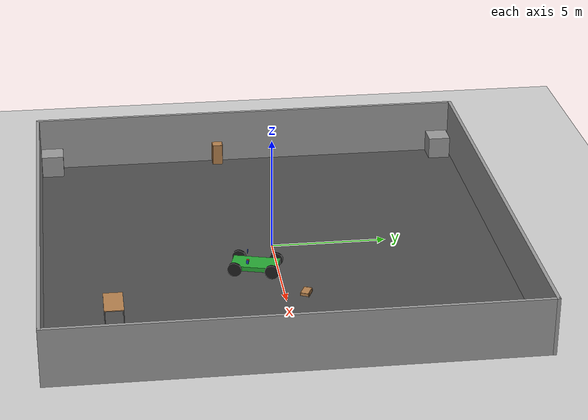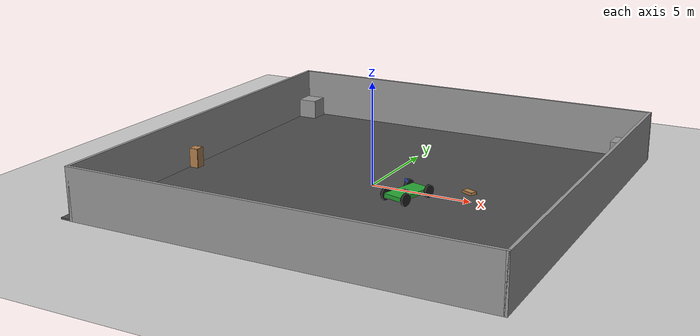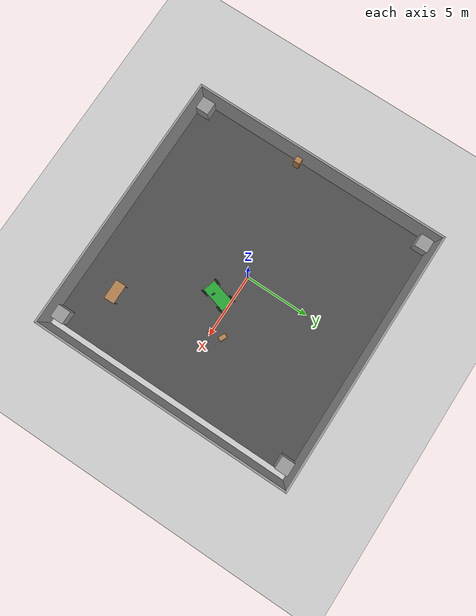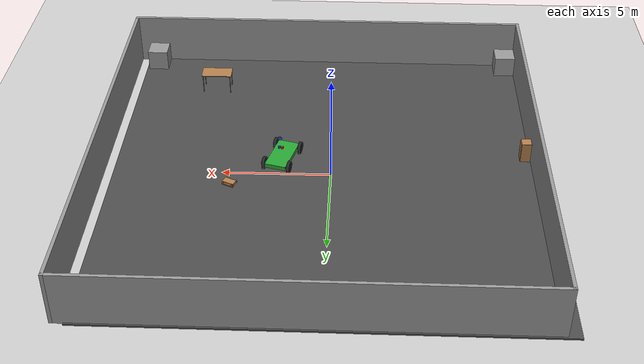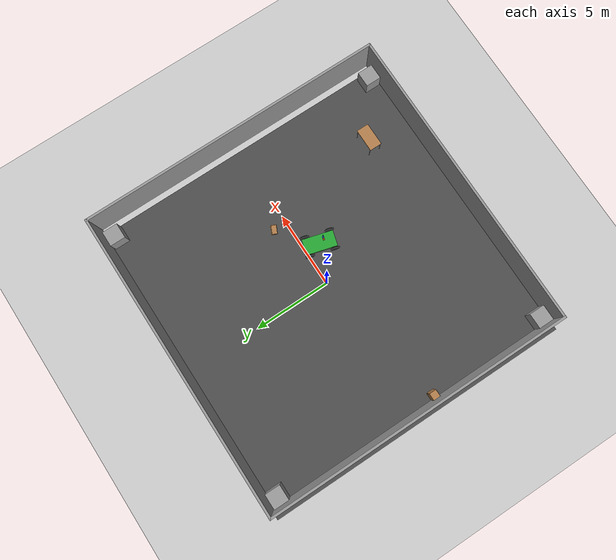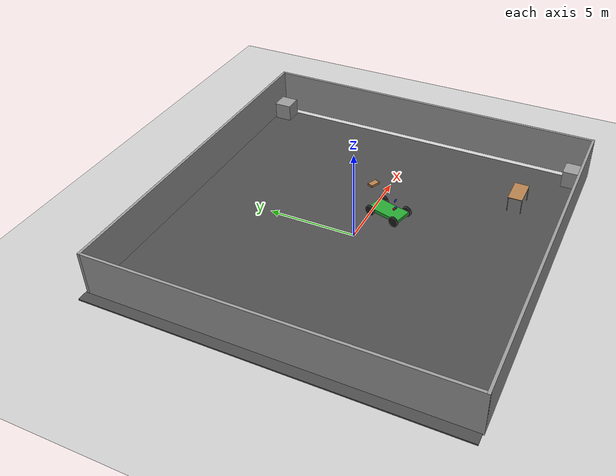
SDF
<sdf version="1.7">
 <world name="default">
  <model name="ground_plane">
   <static>1</static>
   <link name="link">
    <collision name="collision">
     <geometry><plane><normal>0 0 1</normal><size>100 100</size></plane></geometry>
     <surface><friction><ode><mu>100</mu><mu2>50</mu2></ode></friction></surface>
    </collision>
    <visual name="visual">
     <cast_shadows>0</cast_shadows>
     <geometry><plane><normal>0 0 1</normal><size>100 100</size></plane></geometry>
     <material>
      <script><uri>file://media/materials/scripts/gazebo.material</uri><name>Gazebo/Grey</name></script>
     </material>
    </visual>
   </link>
  </model>
  <model name="asphalt_plane">
   <static>1</static>
   <link name="link">
    <collision name="collision"><geometry><box><size>20 20 0.1</size></box></geometry></collision>
    <visual name="visual">
     <cast_shadows>0</cast_shadows>
     <geometry><box><size>20 20 0.1</size></box></geometry>
     <material>
      <script>
       <uri>model://asphalt_plane/materials/scripts</uri>
       <uri>model://asphalt_plane/materials/textures</uri>
       <name>vrc/asphalt</name>
      </script>
     </material>
    </visual>
   </link>
   <pose>0.027118 -0.028406 0 0 -0 0</pose>
  </model>
  <model name="4Walls">
   <pose>0.588305 -0.1078 0 0 -0 0</pose>
   <link name="Wall_17">
    <collision name="Wall_17_Collision">
     <geometry><box><size>20 0.15 2.5</size></box></geometry>
     <pose>0 0 1.25 0 -0 0</pose>
    </collision>
    <visual name="Wall_17_Visual">
     <pose>0 0 1.25 0 -0 0</pose>
     <geometry><box><size>20 0.15 2.5</size></box></geometry>
     <material>
      <script><uri>file://media/materials/scripts/gazebo.material</uri><name>Gazebo/Grey</name></script>
      <ambient>1 1 1 1</ambient>
     </material>
     <meta><layer>0</layer></meta>
    </visual>
    <pose>0 -9.925 0 0 -0 0</pose>
   </link>
   <link name="Wall_19">
    <collision name="Wall_19_Collision">
     <geometry><box><size>20 0.15 2.5</size></box></geometry>
     <pose>0 0 1.25 0 -0 0</pose>
    </collision>
    <visual name="Wall_19_Visual">
     <pose>0 0 1.25 0 -0 0</pose>
     <geometry><box><size>20 0.15 2.5</size></box></geometry>
     <material>
      <script><uri>file://media/materials/scripts/gazebo.material</uri><name>Gazebo/Grey</name></script>
      <ambient>1 1 1 1</ambient>
     </material>
     <meta><layer>0</layer></meta>
    </visual>
    <pose>9.925 -0 0 0 -0 1.5708</pose>
   </link>
   <link name="Wall_21">
    <collision name="Wall_21_Collision">
     <geometry><box><size>20 0.15 2.5</size></box></geometry>
     <pose>0 0 1.25 0 -0 0</pose>
    </collision>
    <visual name="Wall_21_Visual">
     <pose>0 0 1.25 0 -0 0</pose>
     <geometry><box><size>20 0.15 2.5</size></box></geometry>
     <material>
      <script><uri>file://media/materials/scripts/gazebo.material</uri><name>Gazebo/Grey</name></script>
      <ambient>1 1 1 1</ambient>
     </material>
     <meta><layer>0</layer></meta>
    </visual>
    <pose>0 9.925 0 0 -0 3.14159</pose>
   </link>
   <link name="Wall_22">
    <collision name="Wall_22_Collision">
     <geometry><box><size>20 0.15 2.5</size></box></geometry>
     <pose>0 0 1.25 0 -0 0</pose>
    </collision>
    <visual name="Wall_22_Visual">
     <pose>0 0 1.25 0 -0 0</pose>
     <geometry><box><size>20 0.15 2.5</size></box></geometry>
     <material>
      <script><uri>file://media/materials/scripts/gazebo.material</uri><name>Gazebo/Grey</name></script>
      <ambient>1 1 1 1</ambient>
     </material>
     <meta><layer>0</layer></meta>
    </visual>
    <pose>-9.925 -0 0 0 -0 -1.5708</pose>
   </link>
   <static>1</static>
  </model>
  <model name="unit_box">
   <pose>9.40673 -9.39921 0.550002 -4e-06 -0 9.7e-05</pose>
   <link name="link">
    <inertial>
     <mass>1</mass>
     <inertia>
      <ixx>0.166667</ixx>
      <ixy>0</ixy>
      <ixz>0</ixz>
      <iyy>0.166667</iyy>
      <iyz>0</iyz>
      <izz>0.166667</izz>
     </inertia>
    </inertial>
    <collision name="collision"><geometry><box><size>1 1 1</size></box></geometry></collision>
    <visual name="visual">
     <geometry><box><size>1 1 1</size></box></geometry>
     <material>
      <script><name>Gazebo/Grey</name><uri>file://media/materials/scripts/gazebo.material</uri></script>
     </material>
    </visual>
   </link>
  </model>
  <model name="unit_box_clone">
   <pose>9.42462 9.16406 0.550002 -4e-06 -0 4e-05</pose>
   <link name="link">
    <inertial>
     <mass>1</mass>
     <inertia>
      <ixx>0.166667</ixx>
      <ixy>0</ixy>
      <ixz>0</ixz>
      <iyy>0.166667</iyy>
      <iyz>0</iyz>
      <izz>0.166667</izz>
     </inertia>
    </inertial>
    <collision name="collision"><geometry><box><size>1 1 1</size></box></geometry></collision>
    <visual name="visual">
     <geometry><box><size>1 1 1</size></box></geometry>
     <material>
      <script><name>Gazebo/Grey</name><uri>file://media/materials/scripts/gazebo.material</uri></script>
     </material>
    </visual>
   </link>
  </model>
  <model name="unit_box_clone_clone">
   <pose>-8.76167 9.164 0.55 0 -0 -1e-06</pose>
   <link name="link">
    <inertial>
     <mass>1</mass>
     <inertia>
      <ixx>0.166667</ixx>
      <ixy>0</ixy>
      <ixz>0</ixz>
      <iyy>0.166667</iyy>
      <iyz>0</iyz>
      <izz>0.166667</izz>
     </inertia>
    </inertial>
    <collision name="collision"><geometry><box><size>1 1 1</size></box></geometry></collision>
    <visual name="visual">
     <geometry><box><size>1 1 1</size></box></geometry>
     <material>
      <script><name>Gazebo/Grey</name><uri>file://media/materials/scripts/gazebo.material</uri></script>
     </material>
    </visual>
   </link>
  </model>
  <model name="unit_box_clone_clone_clone">
   <pose>-8.75868 -9.42715 0.550002 -4e-06 0 0.001256</pose>
   <link name="link">
    <inertial>
     <mass>1</mass>
     <inertia>
      <ixx>0.166667</ixx>
      <ixy>0</ixy>
      <ixz>0</ixz>
      <iyy>0.166667</iyy>
      <iyz>0</iyz>
      <izz>0.166667</izz>
     </inertia>
    </inertial>
    <collision name="collision"><geometry><box><size>1 1 1</size></box></geometry></collision>
    <visual name="visual">
     <geometry><box><size>1 1 1</size></box></geometry>
     <material>
      <script><name>Gazebo/Grey</name><uri>file://media/materials/scripts/gazebo.material</uri></script>
     </material>
    </visual>
   </link>
  </model>
  <model name="cabinet">
   <static>1</static>
   <link name="cabinet_bottom_plate">
    <inertial>
     <pose>0 0 -1 0 -0 0</pose>
     <inertia><ixx>2.05</ixx><ixy>0</ixy><ixz>0</ixz><iyy>2.05</iyy><iyz>0</iyz><izz>2.05</izz></inertia>
     <mass>25</mass>
    </inertial>
    <collision name="cabinet_bottom_plate_geom">
     <pose>0 0 0.01 0 -0 0</pose>
     <geometry><box><size>0.45 0.45 0.02</size></box></geometry>
    </collision>
    <visual name="cabinet_bottom_plate_geom_visual">
     <pose>0 0 0.01 0 -0 0</pose>
     <geometry><box><size>0.45 0.45 0.02</size></box></geometry>
     <material>
      <script><uri>file://media/materials/scripts/gazebo.material</uri><name>Gazebo/Wood</name></script>
     </material>
    </visual>
    <collision name="cabinet_bottom_plate_geom_cabinet_back_plate">
     <pose>0.235 0 0.51 0 -0 0</pose>
     <geometry><box><size>0.02 0.45 1.02</size></box></geometry>
    </collision>
    <visual name="cabinet_bottom_plate_geom_cabinet_back_plate_visual">
     <pose>0.235 0 0.51 0 -0 0</pose>
     <geometry><box><size>0.02 0.45 1.02</size></box></geometry>
     <material>
      <script><uri>file://media/materials/scripts/gazebo.material</uri><name>Gazebo/Wood</name></script>
     </material>
    </visual>
    <collision name="cabinet_bottom_plate_geom_cabinet_left_plate">
     <pose>0 0.235 0.51 0 -0 0</pose>
     <geometry><box><size>0.45 0.02 1.02</size></box></geometry>
    </collision>
    <visual name="cabinet_bottom_plate_geom_cabinet_left_plate_visual">
     <pose>0 0.235 0.51 0 -0 0</pose>
     <geometry><box><size>0.45 0.02 1.02</size></box></geometry>
     <material>
      <script><uri>file://media/materials/scripts/gazebo.material</uri><name>Gazebo/Wood</name></script>
     </material>
    </visual>
    <collision name="cabinet_bottom_plate_geom_cabinet_middle_plate">
     <pose>0 0 0.51 0 -0 0</pose>
     <geometry><box><size>0.45 0.45 0.02</size></box></geometry>
    </collision>
    <visual name="cabinet_bottom_plate_geom_cabinet_middle_plate_visual">
     <pose>0 0 0.51 0 -0 0</pose>
     <geometry><box><size>0.45 0.45 0.02</size></box></geometry>
     <material>
      <script><uri>file://media/materials/scripts/gazebo.material</uri><name>Gazebo/Wood</name></script>
     </material>
    </visual>
    <collision name="cabinet_bottom_plate_geom_cabinet_right_plate">
     <pose>0 -0.235 0.51 0 -0 0</pose>
     <geometry><box><size>0.45 0.02 1.02</size></box></geometry>
    </collision>
    <visual name="cabinet_bottom_plate_geom_cabinet_right_plate_visual">
     <pose>0 -0.235 0.51 0 -0 0</pose>
     <geometry><box><size>0.45 0.02 1.02</size></box></geometry>
     <material>
      <script><uri>file://media/materials/scripts/gazebo.material</uri><name>Gazebo/Wood</name></script>
     </material>
    </visual>
    <collision name="cabinet_bottom_plate_geom_cabinet_top_plate">
     <pose>0 0 1.01 0 -0 0</pose>
     <geometry><box><size>0.45 0.45 0.02</size></box></geometry>
    </collision>
    <visual name="cabinet_bottom_plate_geom_cabinet_top_plate_visual">
     <pose>0 0 1.01 0 -0 0</pose>
     <geometry><box><size>0.45 0.45 0.02</size></box></geometry>
     <material>
      <script><uri>file://media/materials/scripts/gazebo.material</uri><name>Gazebo/Wood</name></script>
     </material>
    </visual>
   </link>
   <pose>-9.0181 -1.55988 0 0 -0 0</pose>
  </model>
  <model name="car">
   <link name="chassis">
    <pose>0 0 0.3 0 -0 0</pose>
    <collision name="collision"><geometry><box><size>2 1 0.2</size></box></geometry></collision>
    <visual name="visual">
     <geometry><box><size>2 1 0.2</size></box></geometry>
     <material>
      <script><uri>file://media/materials/scripts/gazebo.material</uri><name>Gazebo/Green</name></script>
     </material>
    </visual>
    <inertial>
     <inertia><ixx>1</ixx><ixy>0</ixy><ixz>0</ixz><iyy>1</iyy><iyz>0</iyz><izz>1</izz></inertia>
     <mass>1</mass>
    </inertial>
   </link>
   <link name="front_left_wheel">
    <pose>0.8 0.6 0.3 -0 1.5707 1.5707</pose>
    <collision name="collision">
     <geometry><cylinder><radius>0.3</radius><length>0.1</length></cylinder></geometry>
    </collision>
    <visual name="visual">
     <geometry><cylinder><radius>0.3</radius><length>0.1</length></cylinder></geometry>
     <material>
      <script><uri>file://media/materials/scripts/gazebo.material</uri><name>Gazebo/Black</name></script>
     </material>
    </visual>
    <inertial>
     <inertia><ixx>1</ixx><ixy>0</ixy><ixz>0</ixz><iyy>1</iyy><iyz>0</iyz><izz>1</izz></inertia>
     <mass>1</mass>
    </inertial>
   </link>
   <link name="front_right_wheel">
    <pose>0.8 -0.6 0.3 -0 1.5707 1.5707</pose>
    <collision name="collision">
     <geometry><cylinder><radius>0.3</radius><length>0.1</length></cylinder></geometry>
    </collision>
    <visual name="visual">
     <geometry><cylinder><radius>0.3</radius><length>0.1</length></cylinder></geometry>
     <material>
      <script><uri>file://media/materials/scripts/gazebo.material</uri><name>Gazebo/Black</name></script>
     </material>
    </visual>
    <inertial>
     <inertia><ixx>1</ixx><ixy>0</ixy><ixz>0</ixz><iyy>1</iyy><iyz>0</iyz><izz>1</izz></inertia>
     <mass>1</mass>
    </inertial>
   </link>
   <link name="back_right_wheel">
    <pose>-0.8 -0.6 0.3 -0 1.5707 1.5707</pose>
    <collision name="collision">
     <geometry><cylinder><radius>0.3</radius><length>0.1</length></cylinder></geometry>
    </collision>
    <visual name="visual">
     <geometry><cylinder><radius>0.3</radius><length>0.1</length></cylinder></geometry>
     <material>
      <script><uri>file://media/materials/scripts/gazebo.material</uri><name>Gazebo/Black</name></script>
     </material>
    </visual>
    <inertial>
     <inertia><ixx>1</ixx><ixy>0</ixy><ixz>0</ixz><iyy>1</iyy><iyz>0</iyz><izz>1</izz></inertia>
     <mass>1</mass>
    </inertial>
   </link>
   <link name="back_left_wheel">
    <pose>-0.8 0.6 0.3 -0 1.5707 1.5707</pose>
    <collision name="collision">
     <geometry><cylinder><radius>0.3</radius><length>0.1</length></cylinder></geometry>
    </collision>
    <visual name="visual">
     <geometry><cylinder><radius>0.3</radius><length>0.1</length></cylinder></geometry>
     <material>
      <script><uri>file://media/materials/scripts/gazebo.material</uri><name>Gazebo/Black</name></script>
     </material>
    </visual>
    <inertial>
     <inertia><ixx>1</ixx><ixy>0</ixy><ixz>0</ixz><iyy>1</iyy><iyz>0</iyz><izz>1</izz></inertia>
     <mass>1</mass>
    </inertial>
   </link>
   <link name="gas_pedal">
    <pose>0.3 0.1 0.5 0 -0 0</pose>
    <collision name="collision"><geometry><box><size>0.1 0.1 0.1</size></box></geometry></collision>
    <visual name="visual">
     <geometry><box><size>0.1 0.1 0.1</size></box></geometry>
     <material>
      <script><uri>file://media/materials/scripts/gazebo.material</uri><name>Gazebo/Red</name></script>
     </material>
    </visual>
    <inertial>
     <inertia><ixx>1</ixx><ixy>0</ixy><ixz>0</ixz><iyy>1</iyy><iyz>0</iyz><izz>1</izz></inertia>
     <mass>1</mass>
    </inertial>
   </link>
   <link name="brake_pedal">
    <pose>0.3 0.25 0.5 0 -0 0</pose>
    <collision name="collision"><geometry><box><size>0.1 0.1 0.1</size></box></geometry></collision>
    <visual name="visual">
     <geometry><box><size>0.1 0.1 0.1</size></box></geometry>
     <material>
      <script><uri>file://media/materials/scripts/gazebo.material</uri><name>Gazebo/Blue</name></script>
     </material>
    </visual>
    <inertial>
     <inertia><ixx>1</ixx><ixy>0</ixy><ixz>0</ixz><iyy>1</iyy><iyz>0</iyz><izz>1</izz></inertia>
     <mass>1</mass>
    </inertial>
   </link>
   <link name="steering_wheel">
    <pose>0.3 0.2 1 0 1.5707 0</pose>
    <collision name="collision">
     <geometry><cylinder><radius>0.1</radius><length>0.01</length></cylinder></geometry>
    </collision>
    <visual name="visual">
     <geometry><cylinder><radius>0.1</radius><length>0.01</length></cylinder></geometry>
     <material>
      <script><uri>file://media/materials/scripts/gazebo.material</uri><name>Gazebo/Blue</name></script>
     </material>
    </visual>
    <inertial>
     <inertia><ixx>1</ixx><ixy>0</ixy><ixz>0</ixz><iyy>1</iyy><iyz>0</iyz><izz>1</izz></inertia>
     <mass>1</mass>
    </inertial>
   </link>
   <joint name="gas_joint" type="prismatic">
    <parent>chassis</parent>
    <child>gas_pedal</child>
    <axis>
     <xyz expressed_in="__model__">1 0 0</xyz>
     <limit><lower>0</lower><upper>0.2</upper></limit>
     <dynamics><spring_reference>0</spring_reference><spring_stiffness>0</spring_stiffness></dynamics>
    </axis>
   </joint>
   <joint name="brake_joint" type="prismatic">
    <parent>chassis</parent>
    <child>brake_pedal</child>
    <axis>
     <xyz expressed_in="__model__">1 0 0</xyz>
     <limit><lower>0</lower><upper>0.2</upper></limit>
     <dynamics><spring_reference>0</spring_reference><spring_stiffness>0</spring_stiffness></dynamics>
    </axis>
   </joint>
   <joint name="steering_joint" type="revolute">
    <parent>chassis</parent>
    <child>steering_wheel</child>
    <axis>
     <xyz expressed_in="__model__">1 0 0</xyz>
     <limit><lower>-7.853</lower><upper>7.853</upper></limit>
     <dynamics><spring_reference>0</spring_reference><spring_stiffness>0</spring_stiffness></dynamics>
    </axis>
   </joint>
   <joint name="front_left_joint" type="revolute2">
    <parent>chassis</parent>
    <child>front_left_wheel</child>
    <axis>
     <xyz expressed_in="__model__">0 0 1</xyz>
     <limit><lower>-0.000132435</lower><upper>-0.000132435</upper></limit>
     <dynamics><spring_reference>0</spring_reference><spring_stiffness>0</spring_stiffness></dynamics>
    </axis>
    <axis2>
     <xyz expressed_in="__model__">0 1 0</xyz>
     <limit><upper>1e+16</upper><lower>-1e+16</lower></limit>
     <dynamics><spring_reference>0</spring_reference><spring_stiffness>0</spring_stiffness></dynamics>
    </axis2>
    <physics><ode><limit><cfm>0</cfm><erp>0.9</erp></limit></ode></physics>
   </joint>
   <joint name="front_right_joint" type="revolute2">
    <parent>chassis</parent>
    <child>front_right_wheel</child>
    <axis>
     <xyz expressed_in="__model__">0 0 1</xyz>
     <limit><lower>-0.000132435</lower><upper>-0.000132435</upper></limit>
     <dynamics><spring_reference>0</spring_reference><spring_stiffness>0</spring_stiffness></dynamics>
    </axis>
    <axis2>
     <xyz expressed_in="__model__">0 1 0</xyz>
     <limit><upper>1e+16</upper><lower>-1e+16</lower></limit>
     <dynamics><spring_reference>0</spring_reference><spring_stiffness>0</spring_stiffness></dynamics>
    </axis2>
    <physics><ode><limit><cfm>0</cfm><erp>0.9</erp></limit></ode></physics>
   </joint>
   <joint name="back_right_joint" type="revolute2">
    <parent>chassis</parent>
    <child>back_right_wheel</child>
    <axis>
     <xyz expressed_in="__model__">0 0 1</xyz>
     <limit><lower>0</lower><upper>0</upper></limit>
     <dynamics><spring_reference>0</spring_reference><spring_stiffness>0</spring_stiffness></dynamics>
    </axis>
    <axis2>
     <xyz expressed_in="__model__">0 1 0</xyz>
     <limit><upper>1e+16</upper><lower>-1e+16</lower></limit>
     <dynamics><spring_reference>0</spring_reference><spring_stiffness>0</spring_stiffness></dynamics>
    </axis2>
    <physics><ode><limit><cfm>0</cfm><erp>0.9</erp></limit></ode></physics>
   </joint>
   <joint name="back_left_joint" type="revolute2">
    <parent>chassis</parent>
    <child>back_left_wheel</child>
    <axis>
     <xyz expressed_in="__model__">0 0 1</xyz>
     <limit><lower>0</lower><upper>0</upper></limit>
     <dynamics><spring_reference>0</spring_reference><spring_stiffness>0</spring_stiffness></dynamics>
    </axis>
    <axis2>
     <xyz expressed_in="__model__">0 1 0</xyz>
     <limit><upper>1e+16</upper><lower>-1e+16</lower></limit>
     <dynamics><spring_reference>0</spring_reference><spring_stiffness>0</spring_stiffness></dynamics>
    </axis2>
    <physics><ode><limit><cfm>0</cfm><erp>0.9</erp></limit></ode></physics>
   </joint>
   <plugin name="vehicle" filename="libVehiclePlugin.so">
    <front_left>front_left_joint</front_left>
    <front_right>front_right_joint</front_right>
    <back_left>back_left_joint</back_left>
    <back_right>back_right_joint</back_right>
    <gas>gas_joint</gas>
    <brake>brake_joint</brake>
    <steering>steering_joint</steering>
    <front_power>10</front_power>
    <rear_power>10</rear_power>
    <tire_angle_range>0.5</tire_angle_range>
    <max_speed>10</max_speed>
    <aero_load>0.1</aero_load>
   </plugin>
   <pose>2.29524 -0.994094 0.050017 -1.7e-05 6e-06 -1.84044</pose>
  </model>
  <model name="table">
   <static>1</static>
   <link name="link">
    <collision name="surface">
     <pose>0 0 1 0 -0 0</pose>
     <geometry><box><size>1.5 0.8 0.03</size></box></geometry>
     <surface><friction><ode><mu>0.6</mu><mu2>0.6</mu2></ode></friction></surface>
    </collision>
    <visual name="visual1">
     <pose>0 0 1 0 -0 0</pose>
     <geometry><box><size>1.5 0.8 0.03</size></box></geometry>
     <material>
      <script><uri>file://media/materials/scripts/gazebo.material</uri><name>Gazebo/Wood</name></script>
     </material>
    </visual>
    <collision name="front_left_leg">
     <pose>0.68 0.38 0.5 0 -0 0</pose>
     <geometry><cylinder><radius>0.02</radius><length>1</length></cylinder></geometry>
    </collision>
    <visual name="front_left_leg">
     <pose>0.68 0.38 0.5 0 -0 0</pose>
     <geometry><cylinder><radius>0.02</radius><length>1</length></cylinder></geometry>
     <material>
      <script><uri>file://media/materials/scripts/gazebo.material</uri><name>Gazebo/Grey</name></script>
     </material>
    </visual>
    <collision name="front_right_leg">
     <pose>0.68 -0.38 0.5 0 -0 0</pose>
     <geometry><cylinder><radius>0.02</radius><length>1</length></cylinder></geometry>
    </collision>
    <visual name="front_right_leg">
     <pose>0.68 -0.38 0.5 0 -0 0</pose>
     <geometry><cylinder><radius>0.02</radius><length>1</length></cylinder></geometry>
     <material>
      <script><uri>file://media/materials/scripts/gazebo.material</uri><name>Gazebo/Grey</name></script>
     </material>
    </visual>
    <collision name="back_right_leg">
     <pose>-0.68 -0.38 0.5 0 -0 0</pose>
     <geometry><cylinder><radius>0.02</radius><length>1</length></cylinder></geometry>
    </collision>
    <visual name="back_right_leg">
     <pose>-0.68 -0.38 0.5 0 -0 0</pose>
     <geometry><cylinder><radius>0.02</radius><length>1</length></cylinder></geometry>
     <material>
      <script><uri>file://media/materials/scripts/gazebo.material</uri><name>Gazebo/Grey</name></script>
     </material>
    </visual>
    <collision name="back_left_leg">
     <pose>-0.68 0.38 0.5 0 -0 0</pose>
     <geometry><cylinder><radius>0.02</radius><length>1</length></cylinder></geometry>
    </collision>
    <visual name="back_left_leg">
     <pose>-0.68 0.38 0.5 0 -0 0</pose>
     <geometry><cylinder><radius>0.02</radius><length>1</length></cylinder></geometry>
     <material>
      <script><uri>file://media/materials/scripts/gazebo.material</uri><name>Gazebo/Grey</name></script>
     </material>
    </visual>
   </link>
   <pose>6.05238 -7.13371 0 0 -0 0</pose>
  </model>
  <model name="wooden_case">
   <link name="base">
    <pose>0 0 0.024 0 -0 0</pose>
    <inertial>
     <pose>-0.022184 0 0.171592 0 -0 0</pose>
     <mass>3.96264</mass>
     <inertia>
      <ixx>0.213536</ixx>
      <ixy>0</ixy>
      <ixz>0.000779377</ixz>
      <iyy>0.0708943</iyy>
      <iyz>0</iyz>
      <izz>0.154604</izz>
     </inertia>
    </inertial>
    <collision name="collision_back">
     <pose>-0.053975 0 0.1778 0 -0 0</pose>
     <geometry><box><size>0.01905 0.5461 0.3175</size></box></geometry>
     <surface>
      <contact>
       <poissons_ratio>0.347</poissons_ratio>
       <elastic_modulus>8.8e+09</elastic_modulus>
       <ode><kp>100000</kp><kd>100</kd><max_vel>100</max_vel><min_depth>0.001</min_depth></ode>
      </contact>
      <friction>
       <torsional>
        <coefficient>1</coefficient>
        <use_patch_radius>0</use_patch_radius>
        <surface_radius>0.01</surface_radius>
       </torsional>
      </friction>
     </surface>
    </collision>
    <visual name="visual_back">
     <pose>-0.053975 0 0.1778 0 -0 0</pose>
     <geometry><box><size>0.01905 0.5461 0.3175</size></box></geometry>
     <material>
      <script><uri>file://media/materials/scripts/gazebo.material</uri><name>Gazebo/Wood</name></script>
     </material>
    </visual>
    <collision name="collision_bottom">
     <pose>0 0 0.009525 0 -0 0</pose>
     <geometry><box><size>0.127 0.5842 0.01905</size></box></geometry>
     <surface>
      <contact>
       <poissons_ratio>0.347</poissons_ratio>
       <elastic_modulus>8.8e+09</elastic_modulus>
       <ode><kp>100000</kp><kd>100</kd><max_vel>100</max_vel><min_depth>0.001</min_depth></ode>
      </contact>
      <friction>
       <torsional>
        <coefficient>1</coefficient>
        <use_patch_radius>0</use_patch_radius>
        <surface_radius>0.01</surface_radius>
       </torsional>
      </friction>
     </surface>
    </collision>
    <visual name="visual_bottom">
     <pose>0 0 0.009525 0 -0 0</pose>
     <geometry><box><size>0.127 0.5842 0.01905</size></box></geometry>
     <material>
      <script><uri>file://media/materials/scripts/gazebo.material</uri><name>Gazebo/Wood</name></script>
     </material>
    </visual>
    <collision name="collision_top">
     <pose>0 0 0.346075 0 -0 0</pose>
     <geometry><box><size>0.127 0.5842 0.01905</size></box></geometry>
     <surface>
      <contact>
       <poissons_ratio>0.347</poissons_ratio>
       <elastic_modulus>8.8e+09</elastic_modulus>
       <ode><kp>100000</kp><kd>100</kd><max_vel>100</max_vel><min_depth>0.001</min_depth></ode>
      </contact>
      <friction>
       <torsional>
        <coefficient>1</coefficient>
        <use_patch_radius>0</use_patch_radius>
        <surface_radius>0.01</surface_radius>
       </torsional>
      </friction>
     </surface>
    </collision>
    <visual name="visual_top">
     <pose>0 0 0.346075 0 -0 0</pose>
     <geometry><box><size>0.127 0.5842 0.01905</size></box></geometry>
     <material>
      <script><uri>file://media/materials/scripts/gazebo.material</uri><name>Gazebo/Wood</name></script>
     </material>
    </visual>
    <collision name="collision_left">
     <pose>0 -0.282575 0.1778 0 -0 0</pose>
     <geometry><box><size>0.127 0.01905 0.3175</size></box></geometry>
     <surface>
      <contact>
       <poissons_ratio>0.347</poissons_ratio>
       <elastic_modulus>8.8e+09</elastic_modulus>
       <ode><kp>100000</kp><kd>100</kd><max_vel>100</max_vel><min_depth>0.001</min_depth></ode>
      </contact>
      <friction>
       <torsional>
        <coefficient>1</coefficient>
        <use_patch_radius>0</use_patch_radius>
        <surface_radius>0.01</surface_radius>
       </torsional>
      </friction>
     </surface>
    </collision>
    <visual name="visual_left">
     <pose>0 -0.282575 0.1778 0 -0 0</pose>
     <geometry><box><size>0.127 0.01905 0.3175</size></box></geometry>
     <material>
      <script><uri>file://media/materials/scripts/gazebo.material</uri><name>Gazebo/Wood</name></script>
     </material>
    </visual>
    <collision name="collision_right">
     <pose>0 0.282575 0.1778 0 -0 0</pose>
     <geometry><box><size>0.127 0.01905 0.3175</size></box></geometry>
     <surface>
      <contact>
       <poissons_ratio>0.347</poissons_ratio>
       <elastic_modulus>8.8e+09</elastic_modulus>
       <ode><kp>100000</kp><kd>100</kd><max_vel>100</max_vel><min_depth>0.001</min_depth></ode>
      </contact>
      <friction>
       <torsional>
        <coefficient>1</coefficient>
        <use_patch_radius>0</use_patch_radius>
        <surface_radius>0.01</surface_radius>
       </torsional>
      </friction>
     </surface>
    </collision>
    <visual name="visual_right">
     <pose>0 0.282575 0.1778 0 -0 0</pose>
     <geometry><box><size>0.127 0.01905 0.3175</size></box></geometry>
     <material>
      <script><uri>file://media/materials/scripts/gazebo.material</uri><name>Gazebo/Wood</name></script>
     </material>
    </visual>
    <collision name="collision_block_left">
     <pose>0.0095 -0.2151 -0.012 0 -0 0</pose>
     <geometry><box><size>0.108 0.05 0.024</size></box></geometry>
     <surface>
      <contact>
       <poissons_ratio>0.347</poissons_ratio>
       <elastic_modulus>8.8e+09</elastic_modulus>
       <ode><kp>100000</kp><kd>100</kd><max_vel>100</max_vel><min_depth>0.001</min_depth></ode>
      </contact>
      <friction>
       <torsional>
        <coefficient>1</coefficient>
        <use_patch_radius>0</use_patch_radius>
        <surface_radius>0.01</surface_radius>
       </torsional>
      </friction>
     </surface>
    </collision>
    <visual name="visual_block_left">
     <pose>0.0095 -0.2151 -0.012 0 -0 0</pose>
     <geometry><box><size>0.108 0.05 0.024</size></box></geometry>
     <material>
      <script><uri>file://media/materials/scripts/gazebo.material</uri><name>Gazebo/Wood</name></script>
     </material>
    </visual>
    <collision name="collision_block_right">
     <pose>0.0095 0.2151 -0.012 0 -0 0</pose>
     <geometry><box><size>0.108 0.05 0.024</size></box></geometry>
     <surface>
      <contact>
       <poissons_ratio>0.347</poissons_ratio>
       <elastic_modulus>8.8e+09</elastic_modulus>
       <ode><kp>100000</kp><kd>100</kd><max_vel>100</max_vel><min_depth>0.001</min_depth></ode>
      </contact>
      <friction>
       <torsional>
        <coefficient>1</coefficient>
        <use_patch_radius>0</use_patch_radius>
        <surface_radius>0.01</surface_radius>
       </torsional>
      </friction>
     </surface>
    </collision>
    <visual name="visual_block_right">
     <pose>0.0095 0.2151 -0.012 0 -0 0</pose>
     <geometry><box><size>0.108 0.05 0.024</size></box></geometry>
     <material>
      <script><uri>file://media/materials/scripts/gazebo.material</uri><name>Gazebo/Wood</name></script>
     </material>
    </visual>
   </link>
   <link name="lid">
    <pose>0.243775 0 0.009525 0 -0 0</pose>
    <inertial>
     <mass>1.97874</mass>
     <inertia>
      <ixx>0.0563367</ixx>
      <ixy>0</ixy>
      <ixz>0</ixz>
      <iyy>0.020911</iyy>
      <iyz>0</iyz>
      <izz>0.0771281</izz>
     </inertia>
    </inertial>
    <collision name="collision">
     <geometry><box><size>0.3556 0.5842 0.01905</size></box></geometry>
     <surface>
      <contact>
       <poissons_ratio>0.347</poissons_ratio>
       <elastic_modulus>8.8e+09</elastic_modulus>
       <ode><kp>100000</kp><kd>100</kd><max_vel>100</max_vel><min_depth>0.001</min_depth></ode>
      </contact>
      <friction>
       <torsional>
        <coefficient>1</coefficient>
        <use_patch_radius>0</use_patch_radius>
        <surface_radius>0.01</surface_radius>
       </torsional>
      </friction>
     </surface>
    </collision>
    <visual name="visual">
     <geometry><box><size>0.3556 0.5842 0.01905</size></box></geometry>
     <material>
      <script><uri>file://media/materials/scripts/gazebo.material</uri><name>Gazebo/Wood</name></script>
     </material>
    </visual>
    <visual name="tee_nut_1">
     <pose>0.122 -0.216 0 0 -0 0</pose>
     <geometry><cylinder><radius>0.00635</radius><length>0.0192405</length></cylinder></geometry>
     <material>
      <script><uri>file://media/materials/scripts/gazebo.material</uri><name>Gazebo/Grey</name></script>
     </material>
    </visual>
    <visual name="tee_nut_2">
     <pose>0.122 -0.088 0 0 -0 0</pose>
     <geometry><cylinder><radius>0.00635</radius><length>0.0192405</length></cylinder></geometry>
     <material>
      <script><uri>file://media/materials/scripts/gazebo.material</uri><name>Gazebo/Grey</name></script>
     </material>
    </visual>
    <visual name="tee_nut_3">
     <pose>0.122 0.088 0 0 -0 0</pose>
     <geometry><cylinder><radius>0.00635</radius><length>0.0192405</length></cylinder></geometry>
     <material>
      <script><uri>file://media/materials/scripts/gazebo.material</uri><name>Gazebo/Grey</name></script>
     </material>
    </visual>
    <visual name="tee_nut_4">
     <pose>0.122 0.216 0 0 -0 0</pose>
     <geometry><cylinder><radius>0.00635</radius><length>0.0192405</length></cylinder></geometry>
     <material>
      <script><uri>file://media/materials/scripts/gazebo.material</uri><name>Gazebo/Grey</name></script>
     </material>
    </visual>
   </link>
   <joint name="lid_hinge" type="revolute">
    <pose>-0.1778 0 0.01905 0 -0 0</pose>
    <parent>base</parent>
    <child>lid</child>
    <axis>
     <xyz>0 1 0</xyz>
     <limit><upper>0.523599</upper><lower>-1.5708</lower></limit>
     <dynamics><spring_reference>0</spring_reference><spring_stiffness>0</spring_stiffness></dynamics>
    </axis>
   </joint>
   <pose>4.65759 1.05661 0.143399 0 1.57077 -1.99628</pose>
  </model>
 </world>
</sdf>
